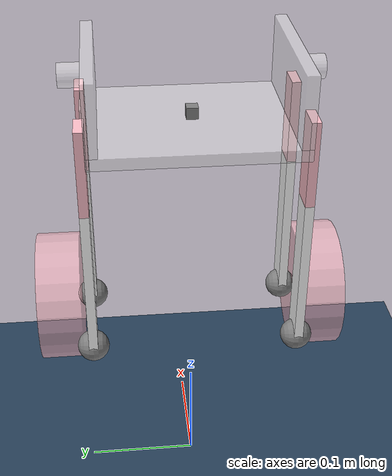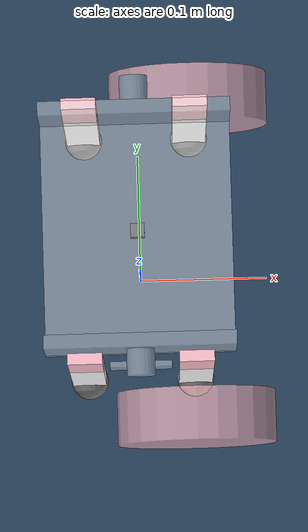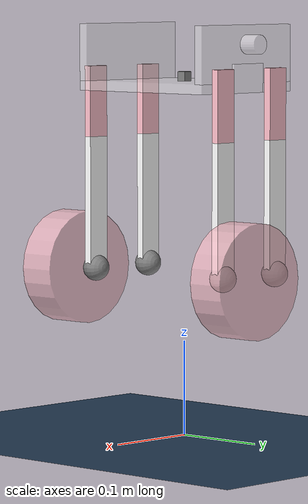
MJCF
<?xml version="1.0" encoding="utf-8"?>
<mujoco model="wheel_bipedal_robot_v1">
  <compiler angle="radian" autolimits="true"/>
  <option timestep="0.002" iterations="50" tolerance="1e-10"/>

  <asset>
    <texture name="texplane" type="2d" builtin="checker" rgb1=".2 .3 .4" rgb2=".1 .2 .3" width="512" height="512" mark="none"/>
    <material name="matplane" reflectance="0.2" texture="texplane" texrepeat="1 1" texuniform="true"/>
  </asset>

  <worldbody>
    <geom name="floor" pos="0 0 0" size="0 0 0.5" type="plane" material="matplane" condim="3"/>
    <light directional="true" diffuse=".8 .8 .8" specular=".2 .2 .2" pos="0 0 5" dir="0 0 -1"/>

    <body name="torso" pos="0.0 0.0 0.4">
      <site name="imu"  type="box" pos="0 0 -0.02" size="0.005 0.005 0.005"/>
      <geom name="torso_base" type="box" mass="0.823" pos="0 0 -0.03" size="0.068 0.0875 0.005" rgba="1 1 1 0.4" />
      <geom name="torso_front" type="box" mass="0.824" pos="0.0 0.0825 0.005" size="0.068 0.005 0.03" rgba="1 1 1 0.4" />
      <geom name="torso_back" type="box" mass="0.824" pos="0.0 -0.0825 0.005" size="0.068 0.005 0.03" rgba="1 1 1 0.4" />

      <!-- ==================== 物理限位块（已打开碰撞，确保参与接触限制） ==================== -->
      <body name="right_limit1" pos="0.0 -0.0915 0.015" quat="0.70710678 0.70710678 0.0 0.0">
        <geom type="cylinder" pos="0.0 0.0 0.005" size="0.01 0.01 0.01" rgba="1 1 1 0.4" group="0" condim="3"/>
      </body>
      <body name="right_limit2" pos="0.0 -0.0915 -0.02" quat="0.70710678 0.70710678 0.0 0.0">
        <geom type="box" pos="0.0 0.0 0.005" size="0.022 0.015 0.002" rgba="1 1 1 0.4" group="0" condim="3"/>
      </body>
      <body name="left_limit1" pos="0.0 0.0915 0.015" quat="0.70710678 0.70710678 0.0 0.0">
        <geom type="cylinder" pos="0.0 0.0 -0.005" size="0.01 0.01 0.01" rgba="1 1 1 0.4" group="0" condim="3"/>
      </body>
      <body name="left_limit2" pos="0.0 0.0915 -0.02" quat="0.70710678 0.70710678 0.0 0.0">
        <geom type="box" pos="0.0 0.0 0.003" size="0.022 0.015 0.002" rgba="1 1 1 0.4" group="0" condim="3"/>
      </body>

      <!-- ==================== 右腿 1 ==================== -->
      <body name="right_up_leg_1" pos="0.04 -0.0915 -0.01" quat="4.32978028e-17 -4.32978028e-17  7.07106781e-01 -7.07106781e-01">
        <joint name="joint_right_phi1" pos="0 0 0" axis="0 0 1" damping="0.266" frictionloss="0.005" />
        <geom type="box" mass="0.01914" pos="0.0 0.0375 0.0" size="0.0125 0.0375 0.004" rgba="1 0.752941 0.796078 1" />

        <body name="right_down_leg_1" pos="0.0 0.075 0.0">
          <joint name="right_down_1" pos="0 0 0" axis="0 0 1" ref="0.5"/>
          <geom type="box" mass="0.02314" pos="0.0 0.07 0.0" size="0.0125 0.07 0.004" rgba="1 1 1 1" />
          <site name="right_down_connect_1" size="0.014" pos="0.0 0.14 0.0"/>

          <body name="right_wheel" pos="0.0 0.14 0.03">
            <joint name="right_wheel_torque" pos="0 0 0" axis="0 0 1" damping="0.0597" frictionloss="0.001" />
            <geom type="cylinder" mass="0.6" pos="0.0 0.0 0.0" size="0.06 0.02" rgba="1 0.752941 0.796078 0.7" />
          </body>
        </body>
      </body>

      <!-- ==================== 右腿 2 ==================== -->
      <body name="right_up_leg_2" pos="-0.04 -0.0915 -0.01" quat="4.32978028e-17 -4.32978028e-17  7.07106781e-01 -7.07106781e-01">
        <joint name="joint_right_phi4" pos="0 0 0" axis="0 0 1" damping="0.266" frictionloss="0.005" />
        <geom type="box" mass="0.02" pos="0.0 0.0375 0.0" size="0.0125 0.0375 0.004" rgba="1 0.752941 0.796078 1" />

        <body name="right_down_leg_2" pos="0.0 0.075 0.0">
          <joint name="right_down_2" pos="0 0 0" axis="0 0 1"/>
          <geom type="box" mass="0.02314" pos="0.0 0.07 0.0" size="0.0125 0.07 0.004" rgba="1 1 1 1" />
          <site name="right_down_connect_2" size="0.014" pos="0.0 0.14 0.0"/>
        </body>
      </body>

      <!-- ==================== 左腿 1 ==================== -->
      <body name="left_up_leg_1" pos="0.04 0.0915 -0.01" quat="4.32978028e-17 -4.32978028e-17 -7.07106781e-01 -7.07106781e-01">
        <joint name="joint_left_phi1" pos="0 0 0" axis="0 0 1" damping="0.266" frictionloss="0.005" />
        <geom type="box" mass="0.01914" pos="0.0 -0.0375 0.0" size="0.0125 0.0375 0.004" rgba="1 0.752941 0.796078 1" />

        <body name="left_down_leg_1" pos="0.0 -0.075 0.0">
          <joint name="left_down_1" pos="0 0 0" axis="0 0 1"/>
          <geom type="box" mass="0.02314" pos="0.0 -0.07 0.0" size="0.0125 0.07 0.004" rgba="1 1 1 1" />
          <site name="left_down_connect_1" size="0.014" pos="0.0 -0.14 0.0"/>

          <body name="left_wheel" pos="0.0 -0.14 0.03">
            <joint name="left_wheel_torque" pos="0 0 0" axis="0 0 1" damping="0.0597" frictionloss="0.001" />
            <geom type="cylinder" mass="0.6" pos="0.0 0.0 0.0" size="0.06 0.02" rgba="1 0.752941 0.796078 0.7" />
          </body>
        </body>
      </body>

      <!-- ==================== 左腿 2 ==================== -->
      <body name="left_up_leg_2" pos="-0.04 0.0915 -0.01" quat="4.32978028e-17 -4.32978028e-17 -7.07106781e-01 -7.07106781e-01">
        <joint name="joint_left_phi4" pos="0 0 0" axis="0 0 1" damping="0.266" frictionloss="0.005" />
        <geom type="box" mass="0.02" pos="0.0 -0.0375 0.0" size="0.0125 0.0375 0.004" rgba="1 0.752941 0.796078 1" />

        <body name="left_down_leg_2" pos="0.0 -0.075 0.0">
          <joint name="left_down_2" pos="0 0 0" axis="0 0 1"/>
          <geom type="box" mass="0.02314" pos="0.0 -0.07 0.0" size="0.0125 0.07 0.004" rgba="1 1 1 1" />
          <site name="left_down_connect_2" size="0.014" pos="0.0 -0.14 0.0"/>
        </body>
      </body>

    </body>
  </worldbody>

  <equality>
    <weld site1="right_down_connect_1" site2="right_down_connect_2" />
    <weld site1="left_down_connect_1" site2="left_down_connect_2" />
  </equality>

  <contact>
    <exclude body1="torso" body2="right_up_leg_1"/>
    <exclude body1="torso" body2="left_up_leg_1"/>

    <exclude body1="right_up_leg_1" body2="right_down_leg_2"/>
    <exclude body1="left_up_leg_1" body2="left_down_leg_2"/>

    <!-- 注意：此处保留原有关节屏蔽，但绝不屏蔽这四个 limit 刚体，使其物理限位生效 -->
    <exclude body1="left_down_leg_1" body2="right_wheel"/>
    <exclude body1="left_down_leg_2" body2="right_wheel"/>

    <exclude body1="right_down_leg_1" body2="left_wheel"/>
    <exclude body1="right_down_leg_2" body2="left_wheel"/>
  </contact>

  <actuator>
    <position joint="joint_right_phi1" name="right_phi1" kp="30" ctrlrange="-6.28 6.28" />
    <position joint="joint_right_phi4" name="right_phi4" kp="30" ctrlrange="-6.28 6.28" />
    <position joint="joint_left_phi1"  name="left_phi1"  kp="30" ctrlrange="-6.28 6.28" />
    <position joint="joint_left_phi4"  name="left_phi4"  kp="30" ctrlrange="-6.28 6.28" />

    <motor joint="right_wheel_torque"  name="right_torque"  ctrlrange="-2.0 2.0" />
    <motor joint="left_wheel_torque"  name="left_torque"  ctrlrange="-2.0 2.0" />

  </actuator>

  <sensor>
    <!-- 准备六个电机的编码器 + imu的四元数 角速度 加速度 -->
    <jointpos name="right1_pos" joint="joint_right_phi1" />
    <jointvel name="right1_vel" joint="joint_right_phi1" />
    <jointpos name="right2_pos" joint="joint_right_phi4" />
    <jointvel name="right2_vel" joint="joint_right_phi4" />
    <jointpos name="rightwheel_pos" joint="right_wheel_torque" />
    <jointvel name="rightwheel_vel" joint="right_wheel_torque" />

    <jointpos name="left1_pos" joint="joint_left_phi1" />
    <jointvel name="left1_vel" joint="joint_left_phi1" />
    <jointpos name="left2_pos" joint="joint_left_phi4" />
    <jointvel name="left2_vel" joint="joint_left_phi4" />
    <jointpos name="leftwheel_pos" joint="left_wheel_torque" />
    <jointvel name="leftwheel_vel" joint="left_wheel_torque" />

    <framequat name="orientation" objtype="site" noise="0.001" objname="imu" />
    <framepos name="position" objtype="site" noise="0.001" objname="imu" />

    <gyro name="angular_vel" site="imu" noise="0.005" cutoff="34.9" />
    <accelerometer name="linear_accel" site="imu" noise="0.005" cutoff="157" />
    <velocimeter name="linear_vel" site="imu" noise="0.001" cutoff="30" />
    <magnetometer name="magnetometer" site="imu" />
  </sensor>
</mujoco>
